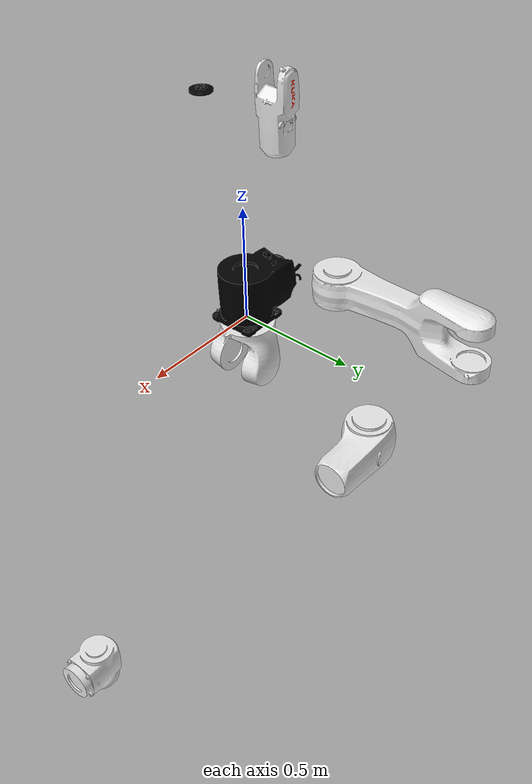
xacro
<?xml version="1.0"?>
<robot xmlns:xacro="http://www.ros.org/wiki/xacro" name="kr10_r1100_2">
  <!-- Import urdf file  -->
  <xacro:include filename="$(find kuka_agilus_support)/urdf/kr10_r1100_2_macro.xacro"/>
  <xacro:include filename="$(find kuka_agilus_support)/urdf/kr_agilus_ros2_control_macro.xacro"/>
  <!-- Read additional arguments  -->
  <xacro:arg name="driver_version" default="rsi_only"/>
  <xacro:arg name="mode" default="hardware"/>
  <xacro:arg name="gpio_config" default=""/>
  <xacro:arg name="roundtrip_time" default="0"/>
  <xacro:arg name="client_ip" default="0.0.0.0"/>
  <xacro:arg name="client_port" default="59152"/>
  <xacro:arg name="mxa_client_port" default="1337"/>
  <xacro:arg name="controller_ip" default="0.0.0.0"/>
  <xacro:arg name="verify_robot_model" default="true"/>
  <xacro:arg name="prefix" default=""/>
  <xacro:arg name="x" default="0"/>
  <xacro:arg name="y" default="0"/>
  <xacro:arg name="z" default="0"/>
  <xacro:arg name="roll" default="0"/>
  <xacro:arg name="pitch" default="0"/>
  <xacro:arg name="yaw" default="0"/>
  <xacro:arg name="rsi_xml_config_file" default=""/>
  <xacro:kuka_agilus_ros2_control name="$(arg prefix)kr10_r1100_2" driver_version="$(arg driver_version)" client_ip="$(arg client_ip)" client_port="$(arg client_port)" mxa_client_port="$(arg mxa_client_port)" controller_ip="$(arg controller_ip)" prefix="$(arg prefix)" mode="$(arg mode)" gpio_config="$(arg gpio_config)" roundtrip_time="$(arg roundtrip_time)" verify_robot_model="$(arg verify_robot_model)" rsi_xml_config_file="$(arg rsi_xml_config_file)">
    <ext_axes_ros2_control_joints/>
  </xacro:kuka_agilus_ros2_control>
  <!-- world link -->
  <link name="world"/>
  <!-- robot links, joints -->
  <xacro:kuka_kr10_r1100_2_robot prefix="$(arg prefix)" package_name="kuka_agilus_support"/>
  <!-- default world - base_link joint -->
  <joint name="$(arg prefix)world-base_link" type="fixed">
    <parent link="world"/>
    <child link="$(arg prefix)base_link"/>
    <origin xyz="$(arg x) $(arg y) $(arg z)" rpy="$(arg roll) $(arg pitch) $(arg yaw)"/>
  </joint>
</robot>

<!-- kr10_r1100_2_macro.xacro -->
<robot xmlns:xacro="http://www.ros.org/wiki/xacro" name="kr10_r1100_2">
  <xacro:macro name="kuka_kr10_r1100_2_robot" params="prefix package_name">
    <link name="${prefix}base"/>
    <link name="${prefix}base_link">
      <collision>
        <geometry>
          <mesh filename="package://${package_name}/meshes/kr10_r1100_2/collision/base_link.stl"/>
        </geometry>
        <origin rpy="0.0 0.0 0.0" xyz="0.0 0.0 0.0"/>
      </collision>
      <inertial>
        <inertia ixx="0.1621" ixy="0.0" ixz="0.0" iyy="0.1088" iyz="0.0" izz="0.1846"/>
        <mass value="16.916"/>
        <origin rpy="1.6166 -1.2213 3.1003" xyz="-0.0371 0.0 0.1086"/>
      </inertial>
      <visual>
        <geometry>
          <mesh filename="package://${package_name}/meshes/kr10_r1100_2/visual/base_link.dae"/>
        </geometry>
        <origin rpy="0.0 0.0 0.0" xyz="0.0 0.0 0.0"/>
      </visual>
    </link>
    <link name="${prefix}flange"/>
    <link name="${prefix}link_1">
      <collision>
        <geometry>
          <mesh filename="package://${package_name}/meshes/kr10_r1100_2/collision/link_1.stl"/>
        </geometry>
        <origin rpy="0.0 0.0 0.0" xyz="0.0 0.0 0.0"/>
      </collision>
      <inertial>
        <inertia ixx="0.0741" ixy="0.0" ixz="0.0" iyy="0.089" iyz="0.0" izz="0.1104"/>
        <mass value="8.416"/>
        <origin rpy="1.3045 -0.9429 -1.4227" xyz="0.0064 -0.0163 -0.1066"/>
      </inertial>
      <visual>
        <geometry>
          <mesh filename="package://${package_name}/meshes/kr10_r1100_2/visual/link_1.dae"/>
        </geometry>
        <origin rpy="0.0 0.0 0.0" xyz="0.0 0.0 0.0"/>
      </visual>
    </link>
    <link name="${prefix}link_2">
      <collision>
        <geometry>
          <mesh filename="package://${package_name}/meshes/kr10_r1100_2/collision/link_2.stl"/>
        </geometry>
        <origin rpy="0.0 0.0 0.0" xyz="0.0 0.0 0.0"/>
      </collision>
      <inertial>
        <inertia ixx="0.8752" ixy="0.0" ixz="0.0" iyy="0.0922" iyz="0.0" izz="0.9157"/>
        <mass value="17.8369"/>
        <origin rpy="1.9525 -1.5422 -0.3903" xyz="0.1912 -0.0047 -0.0752"/>
      </inertial>
      <visual>
        <geometry>
          <mesh filename="package://${package_name}/meshes/kr10_r1100_2/visual/link_2.dae"/>
        </geometry>
        <origin rpy="0.0 0.0 0.0" xyz="0.0 0.0 0.0"/>
      </visual>
    </link>
    <link name="${prefix}link_3">
      <collision>
        <geometry>
          <mesh filename="package://${package_name}/meshes/kr10_r1100_2/collision/link_3.stl"/>
        </geometry>
        <origin rpy="0.0 0.0 0.0" xyz="0.0 0.0 0.0"/>
      </collision>
      <inertial>
        <inertia ixx="0.0447" ixy="0.0" ixz="0.0" iyy="0.019" iyz="0.0" izz="0.0498"/>
        <mass value="6.075"/>
        <origin rpy="-2.6769 -1.3219 1.1861" xyz="0.0439 -0.0125 -0.0683"/>
      </inertial>
      <visual>
        <geometry>
          <mesh filename="package://${package_name}/meshes/kr10_r1100_2/visual/link_3.dae"/>
        </geometry>
        <origin rpy="0.0 0.0 0.0" xyz="0.0 0.0 0.0"/>
      </visual>
    </link>
    <link name="${prefix}link_4">
      <collision>
        <geometry>
          <mesh filename="package://${package_name}/meshes/kr10_r1100_2/collision/link_4.stl"/>
        </geometry>
        <origin rpy="0.0 0.0 0.0" xyz="0.0 0.0 0.0"/>
      </collision>
      <inertial>
        <inertia ixx="0.0123" ixy="0.0" ixz="0.0" iyy="0.0847" iyz="0.0" izz="0.0874"/>
        <mass value="5.1624"/>
        <origin rpy="-2.2281 -1.5326 2.1798" xyz="0.0013 0.0086 -0.141"/>
      </inertial>
      <visual>
        <geometry>
          <mesh filename="package://${package_name}/meshes/kr10_r1100_2/visual/link_4.dae"/>
        </geometry>
        <origin rpy="0.0 0.0 0.0" xyz="0.0 0.0 0.0"/>
      </visual>
    </link>
    <link name="${prefix}link_5">
      <collision>
        <geometry>
          <mesh filename="package://${package_name}/meshes/kr10_r1100_2/collision/link_5.stl"/>
        </geometry>
        <origin rpy="0.0 0.0 0.0" xyz="0.0 0.0 0.0"/>
      </collision>
      <inertial>
        <inertia ixx="0.0017" ixy="0.0" ixz="0.0" iyy="0.0022" iyz="0.0" izz="0.0025"/>
        <mass value="1.6128"/>
        <origin rpy="1.5679 -0.8612 -3.1003" xyz="0.0093 0.0008 -0.0265"/>
      </inertial>
      <visual>
        <geometry>
          <mesh filename="package://${package_name}/meshes/kr10_r1100_2/visual/link_5.dae"/>
        </geometry>
        <origin rpy="0.0 0.0 0.0" xyz="0.0 0.0 0.0"/>
      </visual>
    </link>
    <link name="${prefix}link_6">
      <collision>
        <geometry>
          <mesh filename="package://${package_name}/meshes/kr10_r1100_2/collision/link_6.stl"/>
        </geometry>
        <origin rpy="0.0 0.0 0.0" xyz="0.0 0.0 0.0"/>
      </collision>
      <inertial>
        <inertia ixx="0.0002" ixy="0.0" ixz="0.0" iyy="0.0002" iyz="0.0" izz="0.0003"/>
        <mass value="0.734"/>
        <origin rpy="0.0 0.0 1.2234" xyz="0.0 0.0 -0.0118"/>
      </inertial>
      <visual>
        <geometry>
          <mesh filename="package://${package_name}/meshes/kr10_r1100_2/visual/link_6.dae"/>
        </geometry>
        <origin rpy="0.0 0.0 0.0" xyz="0.0 0.0 0.0"/>
      </visual>
    </link>
    <link name="${prefix}tool0"/>
    <joint name="${prefix}base_link-base" type="fixed">
      <child link="${prefix}base"/>
      <origin rpy="0.0 0.0 0.0" xyz="0.0 0.0 0.0"/>
      <parent link="${prefix}base_link"/>
    </joint>
    <joint name="${prefix}joint_1" type="revolute">
      <axis xyz="0.0 0.0 1.0"/>
      <child link="${prefix}link_1"/>
      <limit effort="288.36" lower="-2.9671" upper="2.9671" velocity="5.236"/>
      <origin rpy="-3.1416 0.0 0.0" xyz="0.0 0.0 0.208"/>
      <parent link="${prefix}base_link"/>
    </joint>
    <joint name="${prefix}joint_2" type="revolute">
      <axis xyz="0.0 0.0 1.0"/>
      <child link="${prefix}link_2"/>
      <limit effort="311.9966" lower="-3.3161" upper="0.7854" velocity="3.927"/>
      <origin rpy="1.5708 0.0 0.0" xyz="0.025 -0.0907 -0.192"/>
      <parent link="${prefix}link_1"/>
    </joint>
    <joint name="${prefix}joint_3" type="revolute">
      <axis xyz="0.0 0.0 1.0"/>
      <child link="${prefix}link_3"/>
      <limit effort="119.759" lower="-2.0944" upper="2.7227" velocity="5.7596"/>
      <origin rpy="0.0 0.0 0.0" xyz="0.56 0.0 -0.0042"/>
      <parent link="${prefix}link_2"/>
    </joint>
    <joint name="${prefix}joint_4" type="revolute">
      <axis xyz="0.0 0.0 1.0"/>
      <child link="${prefix}link_4"/>
      <limit effort="46.0803" lower="-3.2289" upper="3.2289" velocity="6.2832"/>
      <origin rpy="1.5708 0.0 -1.5708" xyz="0.196 -0.025 -0.0865"/>
      <parent link="${prefix}link_3"/>
    </joint>
    <joint name="${prefix}joint_5" type="revolute">
      <axis xyz="0.0 0.0 1.0"/>
      <child link="${prefix}link_5"/>
      <limit effort="41.6135" lower="-2.0944" upper="2.0944" velocity="6.2832"/>
      <origin rpy="0.0 1.5708 1.5708" xyz="0.0 0.0505 -0.319"/>
      <parent link="${prefix}link_4"/>
    </joint>
    <joint name="${prefix}joint_6" type="revolute">
      <axis xyz="0.0 0.0 1.0"/>
      <child link="${prefix}link_6"/>
      <limit effort="28.0386" lower="-6.1087" upper="6.1087" velocity="7.5573"/>
      <origin rpy="1.5708 0.0 -1.5708" xyz="0.0615 0.0 -0.0505"/>
      <parent link="${prefix}link_5"/>
    </joint>
    <joint name="${prefix}link_6-flange" type="fixed">
      <child link="${prefix}flange"/>
      <origin rpy="0.0 1.5708 0.0" xyz="0.0 0.0 -0.0285"/>
      <parent link="${prefix}link_6"/>
    </joint>
    <joint name="${prefix}link_6-tool0" type="fixed">
      <child link="${prefix}tool0"/>
      <origin rpy="3.1416 -0.0 3.1416" xyz="0.0 0.0 -0.0285"/>
      <parent link="${prefix}link_6"/>
    </joint>
  </xacro:macro>
</robot>
